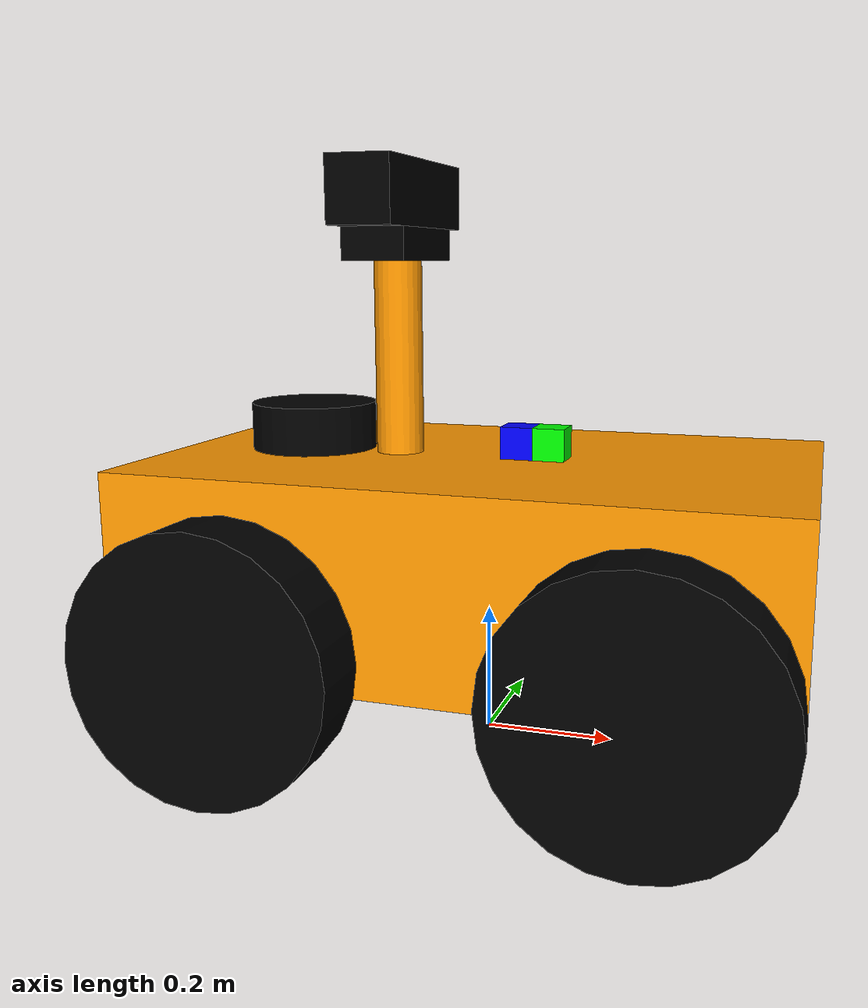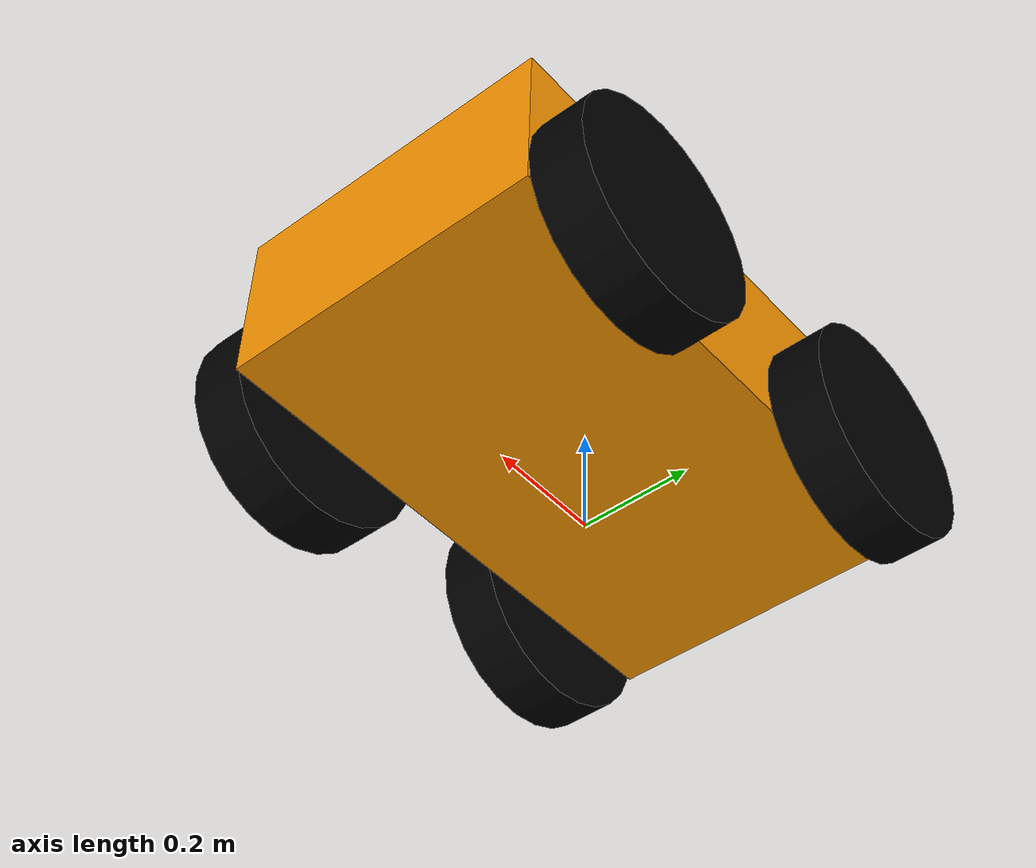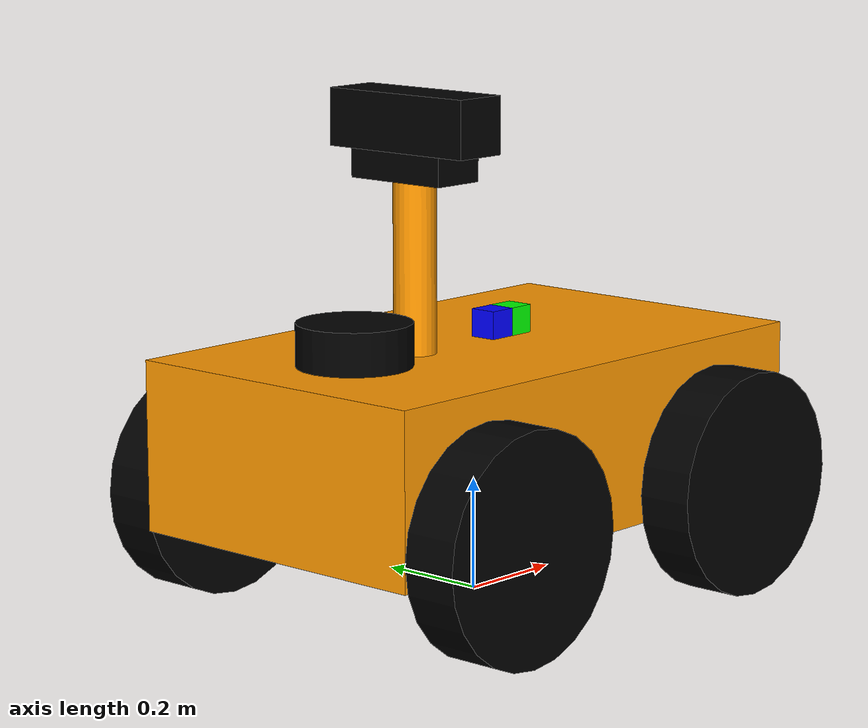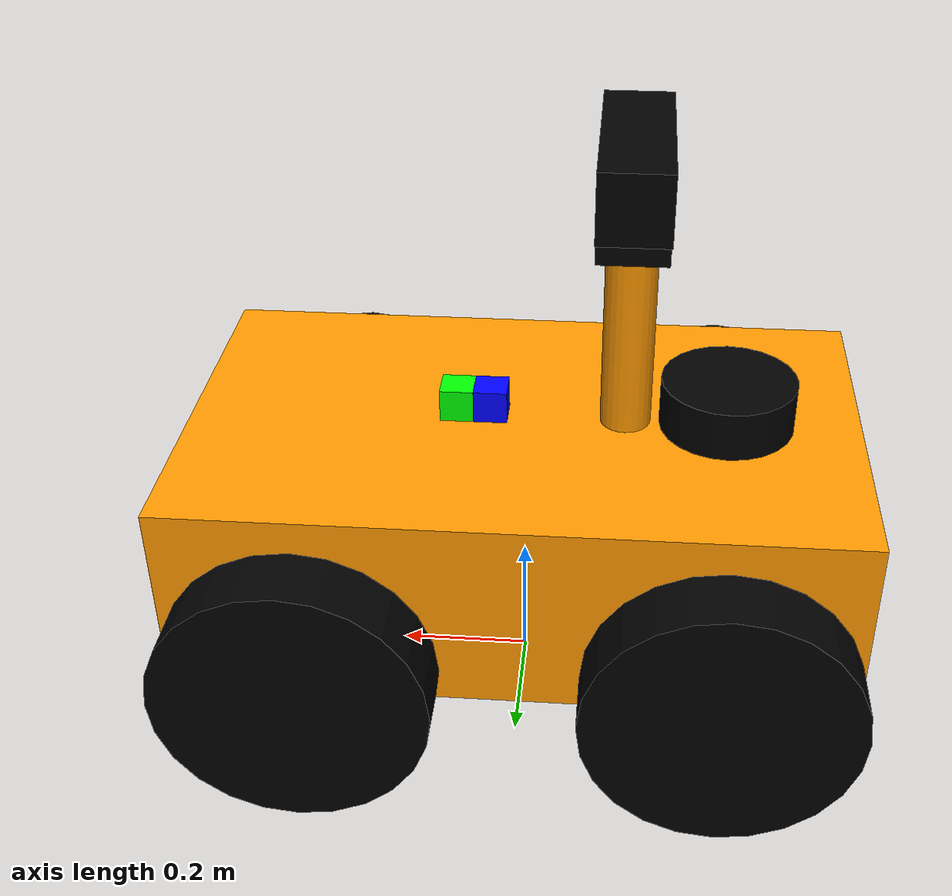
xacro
<?xml version="1.0"?>

<robot xmlns:xacro="http://www.ros.org/wiki/xacro" name= "my_rover">

	<!--Including inertia matrix calculations file-->
	<xacro:include filename="inertial_macros.xacro"/>

	<!--Constants-->
    	<xacro:property name="pi" value="3.14159"/>

	<!-- Main Robot Chassis properties-->
		<!--Dimensions-->
		<xacro:property name="chassis_length" value="1.0"/>
		<xacro:property name="chassis_width" value="0.6"/>
		<xacro:property name="chassis_height" value="0.3"/>

		<!--Mass-->
		<xacro:property name="chassis_mass" value="10.0"/>

	<!-- Wheel properties-->
		<!--Dimensions-->
		<xacro:property name="wheel_length" value="0.1"/>
		<xacro:property name="wheel_radius" value="0.2"/>

		<!--Mass-->
		<xacro:property name="wheel_mass" value="0.1"/>

	<!--Colours in RViz-->
	    <material name="blue">
			<color rgba="0 0 1 1"/>
		</material>

		<material name="white">
			<color rgba="1 1 1 1"/>
	    </material>

		<material name="red">
			<color rgba="1 0 0 1"/>
		</material>

		<material name="green">
			<color rgba="0 1 0 1"/>
		</material>

		<material name="black">
			<color rgba="0 0 0 1"/>
		</material>

		<material name="orange">
			<color rgba="1 0.6 0 1"/>
		</material>

	<!-- Including the gazebo file-->
	<xacro:include filename="$(find rover_package)/urdf/rover_plugins.gazebo" />

	<!-- Gazebo-related extras
	     https://wiki.ros.org/simulator_gazebo/Tutorials/ListOfMaterials
	-->

	<gazebo reference="front_left_wheel">
		<material>Gazebo/Black</material>

		<mu1>0.1</mu1>
		<mu2>0.1</mu2>

		<kp>1000000.0</kp>
		<kd>100.0</kd>

		<maxVel>0.5</maxVel>
		<minDepth>0.0</minDepth>
	</gazebo>

	<gazebo reference="front_right_wheel">
		<material>Gazebo/Black</material>

		<mu1>0.1</mu1>
		<mu2>0.1</mu2>

		<kp>1000000.0</kp>
		<kd>100.0</kd>

		<maxVel>0.5</maxVel>
		<minDepth>0.0</minDepth>
	</gazebo>

	<gazebo reference="rear_left_wheel">
		<material>Gazebo/Black</material>

		<mu1>0.1</mu1>
		<mu2>0.1</mu2>

		<kp>1000000.0</kp>
		<kd>100.0</kd>

		<maxVel>0.5</maxVel>
		<minDepth>0.0</minDepth>
	</gazebo>

	<gazebo reference="rear_right_wheel">
		<material>Gazebo/Black</material>

		<mu1>0.1</mu1>
		<mu2>0.1</mu2>

		<kp>1000000.0</kp>
		<kd>100.0</kd>

		<maxVel>0.5</maxVel>
		<minDepth>0.0</minDepth>

	</gazebo>

	<gazebo reference="rover_chassis">
		<material>Gazebo/Orange</material>
	</gazebo>

	<gazebo reference="camera_link">
		<material>Gazebo/Black</material>
	</gazebo>

	<gazebo reference="zed2_camera_link">
		<material>Gazebo/DarkGrey</material>
	</gazebo>

	<gazebo reference="lidar">
		<material>Gazebo/DarkGrey</material>
	</gazebo>

	<gazebo reference="gps">
		<material>Gazebo/Red</material>
	</gazebo>

	<gazebo reference="imu">
		<material>Gazebo/Green</material>
	</gazebo>

	<gazebo reference="mast_link">
		<material>Gazebo/Orange</material>
	</gazebo>

	<!--#### Link and Joint Definitions ####-->

	<link name= "footprint"/>

	<joint name="footprint_joint" type="fixed">
    	<parent link = "footprint"/>
    	<child link= "rover_chassis"/>
		<origin xyz= "0 0 0.3" rpy="0 0 ${pi}"/>
	</joint>

	<!--Rover chassis-->

	<link name = "rover_chassis">

		<visual>
			<origin xyz="0 0 0" rpy="0 0 0"/>
			<geometry>
				<box size= "${chassis_length} ${chassis_width} ${chassis_height}"/>
			</geometry>
			<material name="orange"/>
		</visual>

		<collision>
			<geometry>
				<box size= "${chassis_length} ${chassis_width} ${chassis_height}"/>
			</geometry>
		</collision>

		<xacro:inertial_box mass="${chassis_mass}" x="${chassis_length}" y="${chassis_width}" z="${chassis_height}">
            <origin xyz="0 0 0" rpy="0 0 0"/>
        </xacro:inertial_box>

	</link>

	<!--Wheel joint definitions.The parameter reflectLR is for left/right, reflectFB is for front/back wheels.-->

	<!-- XY axis is down and to the right. Front= -x, Rear= +x, Left=-y, Right=+y-->

	<!--
		NOTE: To accommodate the retarded camera/zed2 orientation, I had to swap the coordinates for front and back wheels.
		NOTE 2: Scrapped because it doesn't jive with cmd_vel orientations
	-->

	<!--
		NOTE 3: To have the yaw be the correct way round, and also have cmd_vel move the robot the right way, we need to flip the footprint and all the wheel joints by 180 about x.

	-->

	<xacro:macro name="wheel_joint" params="name child reflectFB reflectLR">
		<joint name="${name}_joint" type="continuous">
    		<parent link="rover_chassis"/>
    		<child link="${child}"/>
    		<origin xyz="${reflectFB*(0.3)} ${reflectLR*(0.35)} -0.1" rpy="${pi/2} 0 ${pi}"/>         <!--NOTE TO SELF: ADJUST VALUES & REPLACE LATER WITH THIS:${reflectFB*((chassis_length/2)-0.05)} ${reflectLR*({chassis_width/2+0.05}-->
			<axis xyz="0 0 1"/>
			<limit effort="100" velocity="100" />
    		<dynamics damping="0.1" friction="0.1" />
		</joint>
	</xacro:macro>

	<!--To orient wheels according to the proper ROS convention, so that clockwise yaw=-ve, we'd need to change FB from original values.-->
	<xacro:wheel_joint name="front_left" child="front_left_wheel" reflectFB="1" reflectLR="1" /> 	<!--originally -1,-1-->
	<xacro:wheel_joint name="front_right" child="front_right_wheel" reflectFB="1" reflectLR="-1"/>	<!--originally -1,+1-->
	<xacro:wheel_joint name="rear_left" child="rear_left_wheel" reflectFB="-1" reflectLR="1" />		<!--originally 1,-1-->
	<xacro:wheel_joint name="rear_right" child="rear_right_wheel" reflectFB="-1" reflectLR="-1" />	<!--originally 1,+1-->

	<!--Wheels-->

	<xacro:macro name="wheel_link" params="name">
		<link name="${name}_wheel">

			<visual>
    			<origin xyz="0 0 0" rpy="0 0 0"/>
        		<geometry>
            		<cylinder radius="${wheel_radius}" length="${wheel_length}"/>
        		</geometry>
        		<material name="black"/>
    		</visual>

			<collision>
        		<origin xyz="0.0 0.0 0.0" rpy="0.0 0.0 0.0"/>
        		<geometry>
            		<cylinder radius="${wheel_radius}" length="0.1"/>
        		</geometry>
    		</collision>

			<xacro:inertial_cylinder mass="${wheel_mass}" length="${wheel_length}" radius="${wheel_radius}">
				<origin xyz="0 0 0" rpy="0 0 0"/>
			</xacro:inertial_cylinder>

		</link>
	</xacro:macro>

	<xacro:wheel_link name="front_left" />
	<xacro:wheel_link name="front_right" />
	<xacro:wheel_link name="rear_left" />
	<xacro:wheel_link name="rear_right" />

	<!--LIDAR-->

	<joint name="lidar_joint" type="fixed">
		<parent link="rover_chassis"/>
		<child link="lidar"/>
		<origin xyz="0.3 0 ${chassis_height/2}" rpy="0 0 0"/>
		<axis xyz="0 0 1"/>
	</joint>

	<link name = "lidar">

		<visual>
			<origin xyz="0 0 ${chassis_height/8}" rpy="0 0 0"/>
			<geometry>
				<cylinder length= "${chassis_height/4}" radius= "${chassis_height/3}"/>
			</geometry>
			<material name="black"/>
		</visual>

		<collision>
			<origin xyz="0 0 ${chassis_height/8}" rpy="0 0 0"/>
			<geometry>
				<cylinder length= "${chassis_height/4}" radius= "${chassis_height/3}"/>
			</geometry>
		</collision>

		<xacro:inertial_cylinder mass="${wheel_mass}" length="${chassis_height/4}" radius="${chassis_height/3}">
				<origin xyz="0 0 0" rpy="0 0 0"/>
		</xacro:inertial_cylinder>

	</link>

	<!--Mast-->

	<joint name="mast_joint" type="fixed">
		<parent link="rover_chassis"/>
		<child link="mast_link"/>
		<origin xyz="0.15 0 ${chassis_height/2}" rpy="0 0 0"/>
		<axis xyz="0 0 1"/>
	</joint>

	<link name = "mast_link">

		<visual>
			<origin xyz="0 0 ${chassis_height/2}" rpy="0 0 0"/>
			<geometry>
				<cylinder length= "${chassis_height}" radius= "${chassis_height/8}"/>
			</geometry>
			<material name="orange"/>
		</visual>

		<collision>
			<origin xyz="0 0 0" rpy="0 0 0"/>
			<geometry>
				<cylinder length= "${(chassis_height)}" radius= "${chassis_height/8}"/>
			</geometry>
		</collision>

		<xacro:inertial_cylinder mass="${2*wheel_mass}" length="${chassis_height}" radius="${chassis_height/8}">
				<origin xyz="0 0 0" rpy="0 0 0"/>
		</xacro:inertial_cylinder>

	</link>

	<!--#### Cameras and Zed2 #### -->

	<!--Camera-->

	<joint name= "camera_joint" type="fixed">
			<parent link="mast_link"/>
			<child link="camera_link"/>
			<origin xyz="0 0 ${chassis_height}" rpy="0 0 0"/>
	</joint>

	<link name = "camera_link">

		<visual>
			<origin xyz="0 0 0.025" rpy="0 0 0"/>
			<geometry>
				<box size= "0.1 0.2 0.05"/>
			</geometry>
			<material name="black"/>
		</visual>

		<collision>
			<origin xyz="0 0 0.025" rpy="0 0 0"/>
			<geometry>
				<box size= "0.1 0.2 0.1"/>
			</geometry>
		</collision>

		<xacro:inertial_box mass="${wheel_mass}" x="0.1" y="0.2" z="0.05">
            <origin xyz="0 0 0" rpy="0 0 0"/>
        </xacro:inertial_box>

	</link>

	<joint name= "camera_optical_joint" type="fixed">
		<parent link="camera_link"/>
		<child link="camera_link_optical"/>
		<origin xyz="0 0 0" rpy="${-pi/2} 0 ${-pi/2}"/>
	</joint>

	<link name="camera_link_optical"></link>

	<!--Zed2-->

	<joint name= "zed2_joint" type="fixed">
			<parent link="camera_link"/>
			<child link="zed2_camera_link"/>
			<origin xyz="0 0 0.10" rpy="0 0 0"/>
	</joint>

	<link name = "zed2_camera_link">

		<visual>
			<origin xyz="0 0 0" rpy="0 0 0"/>
			<geometry>
				<box size= "0.1 0.3 0.1"/>
			</geometry>
			<material name="black"/>
		</visual>

		<collision>
			<origin xyz="0 0 0" rpy="0 0 0"/>
			<geometry>
				<box size= "0.1 0.3 0.1"/>
			</geometry>
		</collision>

		<xacro:inertial_box mass="${wheel_mass}" x="0.1" y="0.3" z="0.1">
            <origin xyz="0 0 0" rpy="0 0 0"/>
        </xacro:inertial_box>

	</link>

	<joint name= "zed2_optical_joint" type="fixed">
		<parent link="zed2_camera_link"/>
		<child link="zed2_camera_link_optical"/>
		<origin xyz="0 0 0" rpy="${-pi/2} 0 ${-pi/2}"/>
	</joint>
	<link name="zed2_camera_link_optical"></link>

	<!--GPS-->

	<joint name= "gps_joint" type="fixed">
		<parent link="rover_chassis"/>
		<child link="gps"/>
		<origin xyz="-0.05 0 ${chassis_height/2}" rpy="0 0 0"/>
	</joint>

	<link name = "gps">

		<visual>
			<origin xyz="0 0 0.025" rpy="0 0 0"/>
			<geometry>
				<box size= "0.05 0.05 0.05"/>
			</geometry>
			<material name="blue"/>
		</visual>

		<collision>
			<origin xyz="0 0 0.025" rpy="0 0 0"/>
			<geometry>
				<box size= "0.05 0.05 0.05"/>
			</geometry>
		</collision>

		<xacro:inertial_box mass="${wheel_mass}" x="0.05" y="0.05" z="0.05">
            <origin xyz="0 0 0" rpy="0 0 0"/>
        </xacro:inertial_box>

	</link>

	<!--IMU-->

	<joint name= "imu_joint" type="fixed">
		<parent link="rover_chassis"/>
		<child link="imu"/>
		<origin xyz="-0.10 0 ${chassis_height/2}" rpy="0 0 0"/>
	</joint>

	<link name = "imu">

		<visual>
			<origin xyz="0 0 0.025" rpy="0 0 0"/>
			<geometry>
				<box size= "0.05 0.05 0.05"/>
			</geometry>
			<material name="green"/>
		</visual>

		<collision>
			<origin xyz="0 0 0.025" rpy="0 0 0"/>
			<geometry>
				<box size= "0.05 0.05 0.05"/>
			</geometry>
		</collision>

		<xacro:inertial_box mass="${wheel_mass}" x="0.05" y="0.05" z="0.05">
            <origin xyz="0 0 0" rpy="0 0 0"/>
        </xacro:inertial_box>

	</link>

 </robot>

<!--
										Other issues encountered:
https://stackoverflow.com/questions/46355454/how-to-fix-error-the-markup-in-the-document-following-the-root-element-must-be

-->

<!--
					    				Teleop Node Command:
				      rosrun teleop_twist_keyboard teleop_twist_keyboard.py
-->
